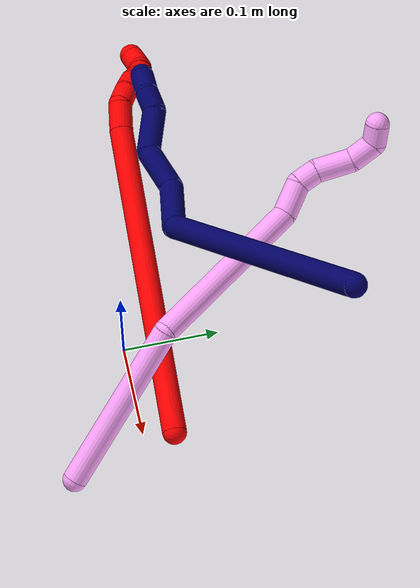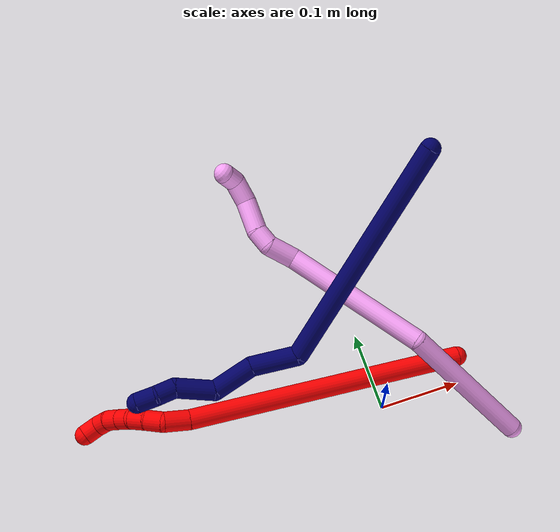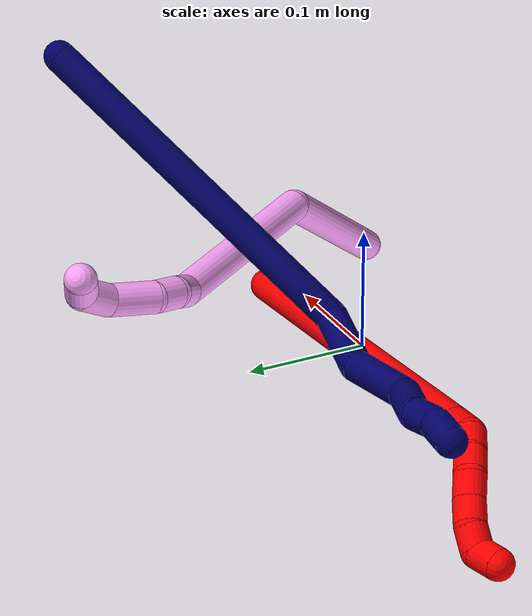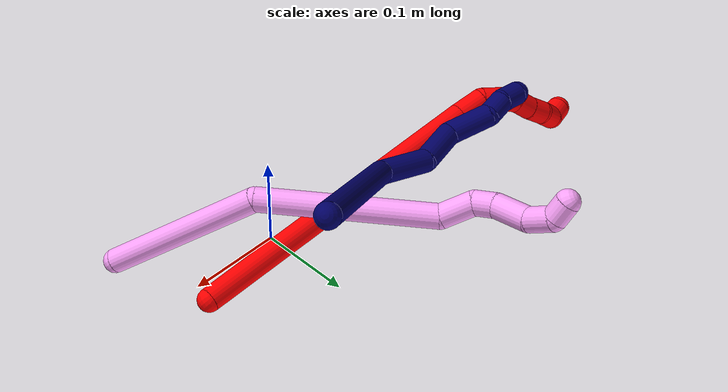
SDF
<sdf version="1.7">
 <world name="default">
  <model name="2">
   <static>0</static>
   <link name="2">
    <collision name="collision-cylinder-e_1_1_4">
     <pose>-0.123266 -0.035645 0.116397 0.297173 -0.791657 -0.124943</pose>
     <geometry><cylinder><radius>0.0125</radius><length>0.346487</length></cylinder></geometry>
     <surface>
      <friction><ode><mu>1.16</mu><mu2>1.16</mu2><slip1>0</slip1><slip2>0</slip2></ode></friction>
      <contact><ode><kp>1e+06</kp><kd>1</kd><max_vel>0</max_vel><min_depth>0.001</min_depth></ode></contact>
     </surface>
    </collision>
    <visual name="visual-cylinder-e_1_1_4">
     <pose>-0.123266 -0.035645 0.116397 0.297173 -0.791657 -0.124943</pose>
     <geometry><cylinder><radius>0.0125</radius><length>0.346487</length></cylinder></geometry>
     <material><ambient>1 0 0 1</ambient></material>
    </visual>
    <collision name="collision-cylinder-e_2_4_5">
     <pose>-0.256221 -0.073365 0.244796 0.171127 -0.671963 -0.059889</pose>
     <geometry><cylinder><radius>0.0125</radius><length>0.031129</length></cylinder></geometry>
     <surface>
      <friction><ode><mu>1.16</mu><mu2>1.16</mu2><slip1>0</slip1><slip2>0</slip2></ode></friction>
      <contact><ode><kp>1e+06</kp><kd>1</kd><max_vel>0</max_vel><min_depth>0.001</min_depth></ode></contact>
     </surface>
    </collision>
    <visual name="visual-cylinder-e_2_4_5">
     <pose>-0.256221 -0.073365 0.244796 0.171127 -0.671963 -0.059889</pose>
     <geometry><cylinder><radius>0.0125</radius><length>0.031129</length></cylinder></geometry>
     <material><ambient>1 0 0 1</ambient></material>
    </visual>
    <collision name="collision-cylinder-e_3_5_6">
     <pose>-0.274285 -0.071926 0.263026 -0.513616 -0.86418 0.24103</pose>
     <geometry><cylinder><radius>0.0125</radius><length>0.022024</length></cylinder></geometry>
     <surface>
      <friction><ode><mu>1.16</mu><mu2>1.16</mu2><slip1>0</slip1><slip2>0</slip2></ode></friction>
      <contact><ode><kp>1e+06</kp><kd>1</kd><max_vel>0</max_vel><min_depth>0.001</min_depth></ode></contact>
     </surface>
    </collision>
    <visual name="visual-cylinder-e_3_5_6">
     <pose>-0.274285 -0.071926 0.263026 -0.513616 -0.86418 0.24103</pose>
     <geometry><cylinder><radius>0.0125</radius><length>0.022024</length></cylinder></geometry>
     <material><ambient>1 0 0 1</ambient></material>
    </visual>
    <collision name="collision-cylinder-e_4_6_7">
     <pose>-0.290949 -0.06452 0.273477 -0.744735 -0.964762 0.403492</pose>
     <geometry><cylinder><radius>0.0125</radius><length>0.020169</length></cylinder></geometry>
     <surface>
      <friction><ode><mu>1.16</mu><mu2>1.16</mu2><slip1>0</slip1><slip2>0</slip2></ode></friction>
      <contact><ode><kp>1e+06</kp><kd>1</kd><max_vel>0</max_vel><min_depth>0.001</min_depth></ode></contact>
     </surface>
    </collision>
    <visual name="visual-cylinder-e_4_6_7">
     <pose>-0.290949 -0.06452 0.273477 -0.744735 -0.964762 0.403492</pose>
     <geometry><cylinder><radius>0.0125</radius><length>0.020169</length></cylinder></geometry>
     <material><ambient>1 0 0 1</ambient></material>
    </visual>
    <collision name="collision-cylinder-e_5_7_8">
     <pose>-0.308015 -0.055886 0.278608 -1.38164 -1.06794 0.909305</pose>
     <geometry><cylinder><radius>0.0125</radius><length>0.020033</length></cylinder></geometry>
     <surface>
      <friction><ode><mu>1.16</mu><mu2>1.16</mu2><slip1>0</slip1><slip2>0</slip2></ode></friction>
      <contact><ode><kp>1e+06</kp><kd>1</kd><max_vel>0</max_vel><min_depth>0.001</min_depth></ode></contact>
     </surface>
    </collision>
    <visual name="visual-cylinder-e_5_7_8">
     <pose>-0.308015 -0.055886 0.278608 -1.38164 -1.06794 0.909305</pose>
     <geometry><cylinder><radius>0.0125</radius><length>0.020033</length></cylinder></geometry>
     <material><ambient>1 0 0 1</ambient></material>
    </visual>
    <collision name="collision-cylinder-e_6_8_9">
     <pose>-0.325872 -0.047205 0.281308 -1.14391 -1.12607 0.771871</pose>
     <geometry><cylinder><radius>0.0125</radius><length>0.02012</length></cylinder></geometry>
     <surface>
      <friction><ode><mu>1.16</mu><mu2>1.16</mu2><slip1>0</slip1><slip2>0</slip2></ode></friction>
      <contact><ode><kp>1e+06</kp><kd>1</kd><max_vel>0</max_vel><min_depth>0.001</min_depth></ode></contact>
     </surface>
    </collision>
    <visual name="visual-cylinder-e_6_8_9">
     <pose>-0.325872 -0.047205 0.281308 -1.14391 -1.12607 0.771871</pose>
     <geometry><cylinder><radius>0.0125</radius><length>0.02012</length></cylinder></geometry>
     <material><ambient>1 0 0 1</ambient></material>
    </visual>
    <collision name="collision-cylinder-e_7_9_10">
     <pose>-0.344728 -0.041143 0.282872 -1.67739 -1.35576 1.46111</pose>
     <geometry><cylinder><radius>0.0125</radius><length>0.020009</length></cylinder></geometry>
     <surface>
      <friction><ode><mu>1.16</mu><mu2>1.16</mu2><slip1>0</slip1><slip2>0</slip2></ode></friction>
      <contact><ode><kp>1e+06</kp><kd>1</kd><max_vel>0</max_vel><min_depth>0.001</min_depth></ode></contact>
     </surface>
    </collision>
    <visual name="visual-cylinder-e_7_9_10">
     <pose>-0.344728 -0.041143 0.282872 -1.67739 -1.35576 1.46111</pose>
     <geometry><cylinder><radius>0.0125</radius><length>0.020009</length></cylinder></geometry>
     <material><ambient>1 0 0 1</ambient></material>
    </visual>
    <collision name="collision-cylinder-e_8_10_2">
     <pose>-0.362788 -0.043323 0.286268 0.870982 -0.974504 -0.483434</pose>
     <geometry><cylinder><radius>0.0125</radius><length>0.02003</length></cylinder></geometry>
     <surface>
      <friction><ode><mu>1.16</mu><mu2>1.16</mu2><slip1>0</slip1><slip2>0</slip2></ode></friction>
      <contact><ode><kp>1e+06</kp><kd>1</kd><max_vel>0</max_vel><min_depth>0.001</min_depth></ode></contact>
     </surface>
    </collision>
    <visual name="visual-cylinder-e_8_10_2">
     <pose>-0.362788 -0.043323 0.286268 0.870982 -0.974504 -0.483434</pose>
     <geometry><cylinder><radius>0.0125</radius><length>0.02003</length></cylinder></geometry>
     <material><ambient>1 0 0 1</ambient></material>
    </visual>
    <collision name="collision-sphere-2">
     <pose>-0.371075 -0.047625 0.28989 0 -0 0</pose>
     <geometry><sphere><radius>0.0125</radius></sphere></geometry>
     <surface>
      <friction><ode><mu>1.16</mu><mu2>1.16</mu2><slip1>0</slip1><slip2>0</slip2></ode></friction>
      <contact><ode><kp>1e+06</kp><kd>1</kd><max_vel>0</max_vel><min_depth>0.001</min_depth></ode></contact>
     </surface>
    </collision>
    <visual name="visual-sphere-2">
     <pose>-0.371075 -0.047625 0.28989 0 -0 0</pose>
     <geometry><sphere><radius>0.0125</radius></sphere></geometry>
     <material><ambient>1 0 0 1</ambient></material>
    </visual>
    <collision name="collision-sphere-10">
     <pose>-0.354501 -0.039021 0.282645 0 -0 0</pose>
     <geometry><sphere><radius>0.0125</radius></sphere></geometry>
     <surface>
      <friction><ode><mu>1.16</mu><mu2>1.16</mu2><slip1>0</slip1><slip2>0</slip2></ode></friction>
      <contact><ode><kp>1e+06</kp><kd>1</kd><max_vel>0</max_vel><min_depth>0.001</min_depth></ode></contact>
     </surface>
    </collision>
    <visual name="visual-sphere-10">
     <pose>-0.354501 -0.039021 0.282645 0 -0 0</pose>
     <geometry><sphere><radius>0.0125</radius></sphere></geometry>
     <material><ambient>1 0 0 1</ambient></material>
    </visual>
    <collision name="collision-sphere-9">
     <pose>-0.334954 -0.043266 0.283099 0 -0 0</pose>
     <geometry><sphere><radius>0.0125</radius></sphere></geometry>
     <surface>
      <friction><ode><mu>1.16</mu><mu2>1.16</mu2><slip1>0</slip1><slip2>0</slip2></ode></friction>
      <contact><ode><kp>1e+06</kp><kd>1</kd><max_vel>0</max_vel><min_depth>0.001</min_depth></ode></contact>
     </surface>
    </collision>
    <visual name="visual-sphere-9">
     <pose>-0.334954 -0.043266 0.283099 0 -0 0</pose>
     <geometry><sphere><radius>0.0125</radius></sphere></geometry>
     <material><ambient>1 0 0 1</ambient></material>
    </visual>
    <collision name="collision-sphere-4">
     <pose>-0.246532 -0.071291 0.232793 0 -0 0</pose>
     <geometry><sphere><radius>0.0125</radius></sphere></geometry>
     <surface>
      <friction><ode><mu>1.16</mu><mu2>1.16</mu2><slip1>0</slip1><slip2>0</slip2></ode></friction>
      <contact><ode><kp>1e+06</kp><kd>1</kd><max_vel>0</max_vel><min_depth>0.001</min_depth></ode></contact>
     </surface>
    </collision>
    <visual name="visual-sphere-4">
     <pose>-0.246532 -0.071291 0.232793 0 -0 0</pose>
     <geometry><sphere><radius>0.0125</radius></sphere></geometry>
     <material><ambient>1 0 0 1</ambient></material>
    </visual>
    <collision name="collision-sphere-1">
     <geometry><sphere><radius>0.0125</radius></sphere></geometry>
     <surface>
      <friction><ode><mu>1.16</mu><mu2>1.16</mu2><slip1>0</slip1><slip2>0</slip2></ode></friction>
      <contact><ode><kp>1e+06</kp><kd>1</kd><max_vel>0</max_vel><min_depth>0.001</min_depth></ode></contact>
     </surface>
    </collision>
    <visual name="visual-sphere-1">
     <geometry><sphere><radius>0.0125</radius></sphere></geometry>
     <material><ambient>1 0 0 1</ambient></material>
    </visual>
    <collision name="collision-sphere-8">
     <pose>-0.316791 -0.051145 0.279516 0 -0 0</pose>
     <geometry><sphere><radius>0.0125</radius></sphere></geometry>
     <surface>
      <friction><ode><mu>1.16</mu><mu2>1.16</mu2><slip1>0</slip1><slip2>0</slip2></ode></friction>
      <contact><ode><kp>1e+06</kp><kd>1</kd><max_vel>0</max_vel><min_depth>0.001</min_depth></ode></contact>
     </surface>
    </collision>
    <visual name="visual-sphere-8">
     <pose>-0.316791 -0.051145 0.279516 0 -0 0</pose>
     <geometry><sphere><radius>0.0125</radius></sphere></geometry>
     <material><ambient>1 0 0 1</ambient></material>
    </visual>
    <collision name="collision-sphere-5">
     <pose>-0.26591 -0.075439 0.256799 0 -0 0</pose>
     <geometry><sphere><radius>0.0125</radius></sphere></geometry>
     <surface>
      <friction><ode><mu>1.16</mu><mu2>1.16</mu2><slip1>0</slip1><slip2>0</slip2></ode></friction>
      <contact><ode><kp>1e+06</kp><kd>1</kd><max_vel>0</max_vel><min_depth>0.001</min_depth></ode></contact>
     </surface>
    </collision>
    <visual name="visual-sphere-5">
     <pose>-0.26591 -0.075439 0.256799 0 -0 0</pose>
     <geometry><sphere><radius>0.0125</radius></sphere></geometry>
     <material><ambient>1 0 0 1</ambient></material>
    </visual>
    <collision name="collision-sphere-6">
     <pose>-0.282661 -0.068414 0.269253 0 -0 0</pose>
     <geometry><sphere><radius>0.0125</radius></sphere></geometry>
     <surface>
      <friction><ode><mu>1.16</mu><mu2>1.16</mu2><slip1>0</slip1><slip2>0</slip2></ode></friction>
      <contact><ode><kp>1e+06</kp><kd>1</kd><max_vel>0</max_vel><min_depth>0.001</min_depth></ode></contact>
     </surface>
    </collision>
    <visual name="visual-sphere-6">
     <pose>-0.282661 -0.068414 0.269253 0 -0 0</pose>
     <geometry><sphere><radius>0.0125</radius></sphere></geometry>
     <material><ambient>1 0 0 1</ambient></material>
    </visual>
    <collision name="collision-sphere-7">
     <pose>-0.299238 -0.060627 0.2777 0 -0 0</pose>
     <geometry><sphere><radius>0.0125</radius></sphere></geometry>
     <surface>
      <friction><ode><mu>1.16</mu><mu2>1.16</mu2><slip1>0</slip1><slip2>0</slip2></ode></friction>
      <contact><ode><kp>1e+06</kp><kd>1</kd><max_vel>0</max_vel><min_depth>0.001</min_depth></ode></contact>
     </surface>
    </collision>
    <visual name="visual-sphere-7">
     <pose>-0.299238 -0.060627 0.2777 0 -0 0</pose>
     <geometry><sphere><radius>0.0125</radius></sphere></geometry>
     <material><ambient>1 0 0 1</ambient></material>
    </visual>
    <inertial>
     <pose>-0.178972 -0.04256 0.163788 0 -0 0</pose>
     <mass>0.5</mass>
     <inertia><ixx>0.0021</ixx><ixy>0</ixy><ixz>0</ixz><iyy>0.003096</iyy><iyz>0</iyz><izz>0.003223</izz></inertia>
    </inertial>
   </link>
   <pose>0.11085 0.030544 0.011756 -0.511789 -0.639834 0.106286</pose>
  </model>
  <model name="4">
   <static>0</static>
   <link name="4">
    <collision name="collision-cylinder-e_1_1_4">
     <pose>0.000339 0.007073 0.087596 -0.080574 0.003856 -0.000155</pose>
     <geometry><cylinder><radius>0.0125</radius><length>0.175764</length></cylinder></geometry>
     <surface>
      <friction><ode><mu>1.16</mu><mu2>1.16</mu2><slip1>0</slip1><slip2>0</slip2></ode></friction>
      <contact><ode><kp>1e+06</kp><kd>1</kd><max_vel>0</max_vel><min_depth>0.001</min_depth></ode></contact>
     </surface>
    </collision>
    <visual name="visual-cylinder-e_1_1_4">
     <pose>0.000339 0.007073 0.087596 -0.080574 0.003856 -0.000155</pose>
     <geometry><cylinder><radius>0.0125</radius><length>0.175764</length></cylinder></geometry>
     <material><ambient>1 0.65098 0.996078 1</ambient></material>
    </visual>
    <collision name="collision-cylinder-e_2_4_5">
     <pose>-0.030507 0.057667 0.247277 -0.543161 -0.354693 0.099734</pose>
     <geometry><cylinder><radius>0.0125</radius><length>0.179585</length></cylinder></geometry>
     <surface>
      <friction><ode><mu>1.16</mu><mu2>1.16</mu2><slip1>0</slip1><slip2>0</slip2></ode></friction>
      <contact><ode><kp>1e+06</kp><kd>1</kd><max_vel>0</max_vel><min_depth>0.001</min_depth></ode></contact>
     </surface>
    </collision>
    <visual name="visual-cylinder-e_2_4_5">
     <pose>-0.030507 0.057667 0.247277 -0.543161 -0.354693 0.099734</pose>
     <geometry><cylinder><radius>0.0125</radius><length>0.179585</length></cylinder></geometry>
     <material><ambient>1 0.65098 0.996078 1</ambient></material>
    </visual>
    <collision name="collision-cylinder-e_3_5_6">
     <pose>-0.066014 0.102036 0.336161 -0.050541 -0.251455 0.006389</pose>
     <geometry><cylinder><radius>0.0125</radius><length>0.034735</length></cylinder></geometry>
     <surface>
      <friction><ode><mu>1.16</mu><mu2>1.16</mu2><slip1>0</slip1><slip2>0</slip2></ode></friction>
      <contact><ode><kp>1e+06</kp><kd>1</kd><max_vel>0</max_vel><min_depth>0.001</min_depth></ode></contact>
     </surface>
    </collision>
    <visual name="visual-cylinder-e_3_5_6">
     <pose>-0.066014 0.102036 0.336161 -0.050541 -0.251455 0.006389</pose>
     <geometry><cylinder><radius>0.0125</radius><length>0.034735</length></cylinder></geometry>
     <material><ambient>1 0.65098 0.996078 1</ambient></material>
    </visual>
    <collision name="collision-cylinder-e_4_6_7">
     <pose>-0.070948 0.108782 0.362359 -0.560249 -0.055209 0.015887</pose>
     <geometry><cylinder><radius>0.0125</radius><length>0.022223</length></cylinder></geometry>
     <surface>
      <friction><ode><mu>1.16</mu><mu2>1.16</mu2><slip1>0</slip1><slip2>0</slip2></ode></friction>
      <contact><ode><kp>1e+06</kp><kd>1</kd><max_vel>0</max_vel><min_depth>0.001</min_depth></ode></contact>
     </surface>
    </collision>
    <visual name="visual-cylinder-e_4_6_7">
     <pose>-0.070948 0.108782 0.362359 -0.560249 -0.055209 0.015887</pose>
     <geometry><cylinder><radius>0.0125</radius><length>0.022223</length></cylinder></geometry>
     <material><ambient>1 0.65098 0.996078 1</ambient></material>
    </visual>
    <collision name="collision-cylinder-e_5_7_8">
     <pose>-0.067553 0.128147 0.385189 -0.786829 0.207724 -0.086474</pose>
     <geometry><cylinder><radius>0.0125</radius><length>0.038877</length></cylinder></geometry>
     <surface>
      <friction><ode><mu>1.16</mu><mu2>1.16</mu2><slip1>0</slip1><slip2>0</slip2></ode></friction>
      <contact><ode><kp>1e+06</kp><kd>1</kd><max_vel>0</max_vel><min_depth>0.001</min_depth></ode></contact>
     </surface>
    </collision>
    <visual name="visual-cylinder-e_5_7_8">
     <pose>-0.067553 0.128147 0.385189 -0.786829 0.207724 -0.086474</pose>
     <geometry><cylinder><radius>0.0125</radius><length>0.038877</length></cylinder></geometry>
     <material><ambient>1 0.65098 0.996078 1</ambient></material>
    </visual>
    <collision name="collision-cylinder-e_6_8_9">
     <pose>-0.060428 0.146786 0.411196 -0.390085 0.225202 -0.044671</pose>
     <geometry><cylinder><radius>0.0125</radius><length>0.027901</length></cylinder></geometry>
     <surface>
      <friction><ode><mu>1.16</mu><mu2>1.16</mu2><slip1>0</slip1><slip2>0</slip2></ode></friction>
      <contact><ode><kp>1e+06</kp><kd>1</kd><max_vel>0</max_vel><min_depth>0.001</min_depth></ode></contact>
     </surface>
    </collision>
    <visual name="visual-cylinder-e_6_8_9">
     <pose>-0.060428 0.146786 0.411196 -0.390085 0.225202 -0.044671</pose>
     <geometry><cylinder><radius>0.0125</radius><length>0.027901</length></cylinder></geometry>
     <material><ambient>1 0.65098 0.996078 1</ambient></material>
    </visual>
    <collision name="collision-cylinder-e_7_9_2">
     <pose>-0.056198 0.148003 0.433389 0.390191 0.106873 0.021138</pose>
     <geometry><cylinder><radius>0.0125</radius><length>0.020915</length></cylinder></geometry>
     <surface>
      <friction><ode><mu>1.16</mu><mu2>1.16</mu2><slip1>0</slip1><slip2>0</slip2></ode></friction>
      <contact><ode><kp>1e+06</kp><kd>1</kd><max_vel>0</max_vel><min_depth>0.001</min_depth></ode></contact>
     </surface>
    </collision>
    <visual name="visual-cylinder-e_7_9_2">
     <pose>-0.056198 0.148003 0.433389 0.390191 0.106873 0.021138</pose>
     <geometry><cylinder><radius>0.0125</radius><length>0.020915</length></cylinder></geometry>
     <material><ambient>1 0.65098 0.996078 1</ambient></material>
    </visual>
    <collision name="collision-sphere-2">
     <pose>-0.055082 0.144048 0.443005 0 -0 0</pose>
     <geometry><sphere><radius>0.0125</radius></sphere></geometry>
     <surface>
      <friction><ode><mu>1.16</mu><mu2>1.16</mu2><slip1>0</slip1><slip2>0</slip2></ode></friction>
      <contact><ode><kp>1e+06</kp><kd>1</kd><max_vel>0</max_vel><min_depth>0.001</min_depth></ode></contact>
     </surface>
    </collision>
    <visual name="visual-sphere-2">
     <pose>-0.055082 0.144048 0.443005 0 -0 0</pose>
     <geometry><sphere><radius>0.0125</radius></sphere></geometry>
     <material><ambient>1 0.65098 0.996078 1</ambient></material>
    </visual>
    <collision name="collision-sphere-9">
     <pose>-0.057313 0.151958 0.423773 0 -0 0</pose>
     <geometry><sphere><radius>0.0125</radius></sphere></geometry>
     <surface>
      <friction><ode><mu>1.16</mu><mu2>1.16</mu2><slip1>0</slip1><slip2>0</slip2></ode></friction>
      <contact><ode><kp>1e+06</kp><kd>1</kd><max_vel>0</max_vel><min_depth>0.001</min_depth></ode></contact>
     </surface>
    </collision>
    <visual name="visual-sphere-9">
     <pose>-0.057313 0.151958 0.423773 0 -0 0</pose>
     <geometry><sphere><radius>0.0125</radius></sphere></geometry>
     <material><ambient>1 0.65098 0.996078 1</ambient></material>
    </visual>
    <collision name="collision-sphere-4">
     <pose>0.000678 0.014147 0.175192 0 -0 0</pose>
     <geometry><sphere><radius>0.0125</radius></sphere></geometry>
     <surface>
      <friction><ode><mu>1.16</mu><mu2>1.16</mu2><slip1>0</slip1><slip2>0</slip2></ode></friction>
      <contact><ode><kp>1e+06</kp><kd>1</kd><max_vel>0</max_vel><min_depth>0.001</min_depth></ode></contact>
     </surface>
    </collision>
    <visual name="visual-sphere-4">
     <pose>0.000678 0.014147 0.175192 0 -0 0</pose>
     <geometry><sphere><radius>0.0125</radius></sphere></geometry>
     <material><ambient>1 0.65098 0.996078 1</ambient></material>
    </visual>
    <collision name="collision-sphere-1">
     <geometry><sphere><radius>0.0125</radius></sphere></geometry>
     <surface>
      <friction><ode><mu>1.16</mu><mu2>1.16</mu2><slip1>0</slip1><slip2>0</slip2></ode></friction>
      <contact><ode><kp>1e+06</kp><kd>1</kd><max_vel>0</max_vel><min_depth>0.001</min_depth></ode></contact>
     </surface>
    </collision>
    <visual name="visual-sphere-1">
     <geometry><sphere><radius>0.0125</radius></sphere></geometry>
     <material><ambient>1 0.65098 0.996078 1</ambient></material>
    </visual>
    <collision name="collision-sphere-8">
     <pose>-0.063544 0.141615 0.398619 0 -0 0</pose>
     <geometry><sphere><radius>0.0125</radius></sphere></geometry>
     <surface>
      <friction><ode><mu>1.16</mu><mu2>1.16</mu2><slip1>0</slip1><slip2>0</slip2></ode></friction>
      <contact><ode><kp>1e+06</kp><kd>1</kd><max_vel>0</max_vel><min_depth>0.001</min_depth></ode></contact>
     </surface>
    </collision>
    <visual name="visual-sphere-8">
     <pose>-0.063544 0.141615 0.398619 0 -0 0</pose>
     <geometry><sphere><radius>0.0125</radius></sphere></geometry>
     <material><ambient>1 0.65098 0.996078 1</ambient></material>
    </visual>
    <collision name="collision-sphere-5">
     <pose>-0.061693 0.101187 0.319362 0 -0 0</pose>
     <geometry><sphere><radius>0.0125</radius></sphere></geometry>
     <surface>
      <friction><ode><mu>1.16</mu><mu2>1.16</mu2><slip1>0</slip1><slip2>0</slip2></ode></friction>
      <contact><ode><kp>1e+06</kp><kd>1</kd><max_vel>0</max_vel><min_depth>0.001</min_depth></ode></contact>
     </surface>
    </collision>
    <visual name="visual-sphere-5">
     <pose>-0.061693 0.101187 0.319362 0 -0 0</pose>
     <geometry><sphere><radius>0.0125</radius></sphere></geometry>
     <material><ambient>1 0.65098 0.996078 1</ambient></material>
    </visual>
    <collision name="collision-sphere-6">
     <pose>-0.070335 0.102886 0.352961 0 -0 0</pose>
     <geometry><sphere><radius>0.0125</radius></sphere></geometry>
     <surface>
      <friction><ode><mu>1.16</mu><mu2>1.16</mu2><slip1>0</slip1><slip2>0</slip2></ode></friction>
      <contact><ode><kp>1e+06</kp><kd>1</kd><max_vel>0</max_vel><min_depth>0.001</min_depth></ode></contact>
     </surface>
    </collision>
    <visual name="visual-sphere-6">
     <pose>-0.070335 0.102886 0.352961 0 -0 0</pose>
     <geometry><sphere><radius>0.0125</radius></sphere></geometry>
     <material><ambient>1 0.65098 0.996078 1</ambient></material>
    </visual>
    <collision name="collision-sphere-7">
     <pose>-0.071561 0.114678 0.371758 0 -0 0</pose>
     <geometry><sphere><radius>0.0125</radius></sphere></geometry>
     <surface>
      <friction><ode><mu>1.16</mu><mu2>1.16</mu2><slip1>0</slip1><slip2>0</slip2></ode></friction>
      <contact><ode><kp>1e+06</kp><kd>1</kd><max_vel>0</max_vel><min_depth>0.001</min_depth></ode></contact>
     </surface>
    </collision>
    <visual name="visual-sphere-7">
     <pose>-0.071561 0.114678 0.371758 0 -0 0</pose>
     <geometry><sphere><radius>0.0125</radius></sphere></geometry>
     <material><ambient>1 0.65098 0.996078 1</ambient></material>
    </visual>
    <inertial>
     <pose>-0.029553 0.059468 0.23009 0 -0 0</pose>
     <mass>0.5</mass>
     <inertia>
      <ixx>0.000974</ixx>
      <ixy>0</ixy>
      <ixz>0</ixz>
      <iyy>0.000955</iyy>
      <iyz>0</iyz>
      <izz>-7.8e-05</izz>
     </inertia>
    </inertial>
   </link>
   <pose>0.140994 -0.077475 0.011487 -0.726942 -0.623338 0.167858</pose>
  </model>
  <model name="7">
   <static>0</static>
   <link name="7">
    <collision name="collision-cylinder-e_1_1_4">
     <pose>-0.01763 -0.024094 -0.142846 2.9745 -0.121108 -1.25327</pose>
     <geometry><cylinder><radius>0.0125</radius><length>0.291865</length></cylinder></geometry>
     <surface>
      <friction><ode><mu>1.16</mu><mu2>1.16</mu2><slip1>0</slip1><slip2>0</slip2></ode></friction>
      <contact><ode><kp>1e+06</kp><kd>1</kd><max_vel>0</max_vel><min_depth>0.001</min_depth></ode></contact>
     </surface>
    </collision>
    <visual name="visual-cylinder-e_1_1_4">
     <pose>-0.01763 -0.024094 -0.142846 2.9745 -0.121108 -1.25327</pose>
     <geometry><cylinder><radius>0.0125</radius><length>0.291865</length></cylinder></geometry>
     <material><ambient>0.003922 0 0.403922 1</ambient></material>
    </visual>
    <collision name="collision-cylinder-e_2_4_5">
     <pose>-0.054594 -0.040195 -0.306351 -2.77245 -0.717575 2.21777</pose>
     <geometry><cylinder><radius>0.0125</radius><length>0.058803</length></cylinder></geometry>
     <surface>
      <friction><ode><mu>1.16</mu><mu2>1.16</mu2><slip1>0</slip1><slip2>0</slip2></ode></friction>
      <contact><ode><kp>1e+06</kp><kd>1</kd><max_vel>0</max_vel><min_depth>0.001</min_depth></ode></contact>
     </surface>
    </collision>
    <visual name="visual-cylinder-e_2_4_5">
     <pose>-0.054594 -0.040195 -0.306351 -2.77245 -0.717575 2.21777</pose>
     <geometry><cylinder><radius>0.0125</radius><length>0.058803</length></cylinder></geometry>
     <material><ambient>0.003922 0 0.403922 1</ambient></material>
    </visual>
    <collision name="collision-cylinder-e_3_5_6">
     <pose>-0.091352 -0.036938 -0.346028 2.89758 -0.726726 -2.51773</pose>
     <geometry><cylinder><radius>0.0125</radius><length>0.052449</length></cylinder></geometry>
     <surface>
      <friction><ode><mu>1.16</mu><mu2>1.16</mu2><slip1>0</slip1><slip2>0</slip2></ode></friction>
      <contact><ode><kp>1e+06</kp><kd>1</kd><max_vel>0</max_vel><min_depth>0.001</min_depth></ode></contact>
     </surface>
    </collision>
    <visual name="visual-cylinder-e_3_5_6">
     <pose>-0.091352 -0.036938 -0.346028 2.89758 -0.726726 -2.51773</pose>
     <geometry><cylinder><radius>0.0125</radius><length>0.052449</length></cylinder></geometry>
     <material><ambient>0.003922 0 0.403922 1</ambient></material>
    </visual>
    <collision name="collision-cylinder-e_4_6_7">
     <pose>-0.130581 -0.035131 -0.373229 -2.46715 -1.12291 2.12453</pose>
     <geometry><cylinder><radius>0.0125</radius><length>0.048384</length></cylinder></geometry>
     <surface>
      <friction><ode><mu>1.16</mu><mu2>1.16</mu2><slip1>0</slip1><slip2>0</slip2></ode></friction>
      <contact><ode><kp>1e+06</kp><kd>1</kd><max_vel>0</max_vel><min_depth>0.001</min_depth></ode></contact>
     </surface>
    </collision>
    <visual name="visual-cylinder-e_4_6_7">
     <pose>-0.130581 -0.035131 -0.373229 -2.46715 -1.12291 2.12453</pose>
     <geometry><cylinder><radius>0.0125</radius><length>0.048384</length></cylinder></geometry>
     <material><ambient>0.003922 0 0.403922 1</ambient></material>
    </visual>
    <collision name="collision-cylinder-e_5_7_8">
     <pose>-0.16218 -0.030316 -0.38817 2.89136 -0.951851 -2.66293</pose>
     <geometry><cylinder><radius>0.0125</radius><length>0.024047</length></cylinder></geometry>
     <surface>
      <friction><ode><mu>1.16</mu><mu2>1.16</mu2><slip1>0</slip1><slip2>0</slip2></ode></friction>
      <contact><ode><kp>1e+06</kp><kd>1</kd><max_vel>0</max_vel><min_depth>0.001</min_depth></ode></contact>
     </surface>
    </collision>
    <visual name="visual-cylinder-e_5_7_8">
     <pose>-0.16218 -0.030316 -0.38817 2.89136 -0.951851 -2.66293</pose>
     <geometry><cylinder><radius>0.0125</radius><length>0.024047</length></cylinder></geometry>
     <material><ambient>0.003922 0 0.403922 1</ambient></material>
    </visual>
    <collision name="collision-cylinder-e_6_8_2">
     <pose>-0.180435 -0.030823 -0.403668 -3.0029 -0.764475 2.79941</pose>
     <geometry><cylinder><radius>0.0125</radius><length>0.024453</length></cylinder></geometry>
     <surface>
      <friction><ode><mu>1.16</mu><mu2>1.16</mu2><slip1>0</slip1><slip2>0</slip2></ode></friction>
      <contact><ode><kp>1e+06</kp><kd>1</kd><max_vel>0</max_vel><min_depth>0.001</min_depth></ode></contact>
     </surface>
    </collision>
    <visual name="visual-cylinder-e_6_8_2">
     <pose>-0.180435 -0.030823 -0.403668 -3.0029 -0.764475 2.79941</pose>
     <geometry><cylinder><radius>0.0125</radius><length>0.024453</length></cylinder></geometry>
     <material><ambient>0.003922 0 0.403922 1</ambient></material>
    </visual>
    <collision name="collision-sphere-2">
     <pose>-0.188898 -0.029603 -0.412408 0 -0 0</pose>
     <geometry><sphere><radius>0.0125</radius></sphere></geometry>
     <surface>
      <friction><ode><mu>1.16</mu><mu2>1.16</mu2><slip1>0</slip1><slip2>0</slip2></ode></friction>
      <contact><ode><kp>1e+06</kp><kd>1</kd><max_vel>0</max_vel><min_depth>0.001</min_depth></ode></contact>
     </surface>
    </collision>
    <visual name="visual-sphere-2">
     <pose>-0.188898 -0.029603 -0.412408 0 -0 0</pose>
     <geometry><sphere><radius>0.0125</radius></sphere></geometry>
     <material><ambient>0.003922 0 0.403922 1</ambient></material>
    </visual>
    <collision name="collision-sphere-4">
     <pose>-0.035261 -0.048188 -0.285692 0 -0 0</pose>
     <geometry><sphere><radius>0.0125</radius></sphere></geometry>
     <surface>
      <friction><ode><mu>1.16</mu><mu2>1.16</mu2><slip1>0</slip1><slip2>0</slip2></ode></friction>
      <contact><ode><kp>1e+06</kp><kd>1</kd><max_vel>0</max_vel><min_depth>0.001</min_depth></ode></contact>
     </surface>
    </collision>
    <visual name="visual-sphere-4">
     <pose>-0.035261 -0.048188 -0.285692 0 -0 0</pose>
     <geometry><sphere><radius>0.0125</radius></sphere></geometry>
     <material><ambient>0.003922 0 0.403922 1</ambient></material>
    </visual>
    <collision name="collision-sphere-1">
     <geometry><sphere><radius>0.0125</radius></sphere></geometry>
     <surface>
      <friction><ode><mu>1.16</mu><mu2>1.16</mu2><slip1>0</slip1><slip2>0</slip2></ode></friction>
      <contact><ode><kp>1e+06</kp><kd>1</kd><max_vel>0</max_vel><min_depth>0.001</min_depth></ode></contact>
     </surface>
    </collision>
    <visual name="visual-sphere-1">
     <geometry><sphere><radius>0.0125</radius></sphere></geometry>
     <material><ambient>0.003922 0 0.403922 1</ambient></material>
    </visual>
    <collision name="collision-sphere-8">
     <pose>-0.171973 -0.032043 -0.394929 0 -0 0</pose>
     <geometry><sphere><radius>0.0125</radius></sphere></geometry>
     <surface>
      <friction><ode><mu>1.16</mu><mu2>1.16</mu2><slip1>0</slip1><slip2>0</slip2></ode></friction>
      <contact><ode><kp>1e+06</kp><kd>1</kd><max_vel>0</max_vel><min_depth>0.001</min_depth></ode></contact>
     </surface>
    </collision>
    <visual name="visual-sphere-8">
     <pose>-0.171973 -0.032043 -0.394929 0 -0 0</pose>
     <geometry><sphere><radius>0.0125</radius></sphere></geometry>
     <material><ambient>0.003922 0 0.403922 1</ambient></material>
    </visual>
    <collision name="collision-sphere-5">
     <pose>-0.073928 -0.032203 -0.32701 0 -0 0</pose>
     <geometry><sphere><radius>0.0125</radius></sphere></geometry>
     <surface>
      <friction><ode><mu>1.16</mu><mu2>1.16</mu2><slip1>0</slip1><slip2>0</slip2></ode></friction>
      <contact><ode><kp>1e+06</kp><kd>1</kd><max_vel>0</max_vel><min_depth>0.001</min_depth></ode></contact>
     </surface>
    </collision>
    <visual name="visual-sphere-5">
     <pose>-0.073928 -0.032203 -0.32701 0 -0 0</pose>
     <geometry><sphere><radius>0.0125</radius></sphere></geometry>
     <material><ambient>0.003922 0 0.403922 1</ambient></material>
    </visual>
    <collision name="collision-sphere-6">
     <pose>-0.108776 -0.041673 -0.365047 0 -0 0</pose>
     <geometry><sphere><radius>0.0125</radius></sphere></geometry>
     <surface>
      <friction><ode><mu>1.16</mu><mu2>1.16</mu2><slip1>0</slip1><slip2>0</slip2></ode></friction>
      <contact><ode><kp>1e+06</kp><kd>1</kd><max_vel>0</max_vel><min_depth>0.001</min_depth></ode></contact>
     </surface>
    </collision>
    <visual name="visual-sphere-6">
     <pose>-0.108776 -0.041673 -0.365047 0 -0 0</pose>
     <geometry><sphere><radius>0.0125</radius></sphere></geometry>
     <material><ambient>0.003922 0 0.403922 1</ambient></material>
    </visual>
    <collision name="collision-sphere-7">
     <pose>-0.152387 -0.028589 -0.381412 0 -0 0</pose>
     <geometry><sphere><radius>0.0125</radius></sphere></geometry>
     <surface>
      <friction><ode><mu>1.16</mu><mu2>1.16</mu2><slip1>0</slip1><slip2>0</slip2></ode></friction>
      <contact><ode><kp>1e+06</kp><kd>1</kd><max_vel>0</max_vel><min_depth>0.001</min_depth></ode></contact>
     </surface>
    </collision>
    <visual name="visual-sphere-7">
     <pose>-0.152387 -0.028589 -0.381412 0 -0 0</pose>
     <geometry><sphere><radius>0.0125</radius></sphere></geometry>
     <material><ambient>0.003922 0 0.403922 1</ambient></material>
    </visual>
    <inertial>
     <pose>-0.055555 -0.029031 -0.230236 0 -0 0</pose>
     <mass>0.5</mass>
     <inertia>
      <ixx>-0.001347</ixx>
      <ixy>0</ixy>
      <ixz>0</ixz>
      <iyy>-0.002518</iyy>
      <iyz>0</iyz>
      <izz>0.000593</izz>
     </inertia>
    </inertial>
   </link>
   <pose>0.116544 0.205337 0.245284 -0.507501 0.62273 -0.264872</pose>
  </model>
 </world>
</sdf>
